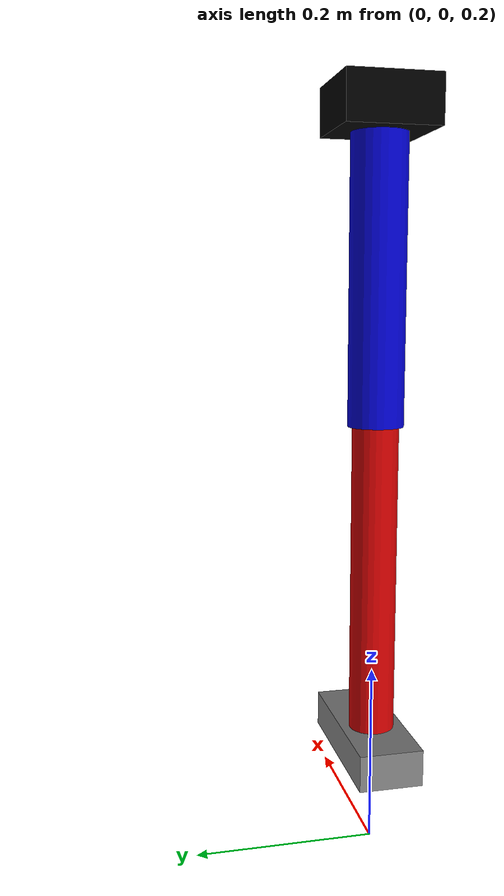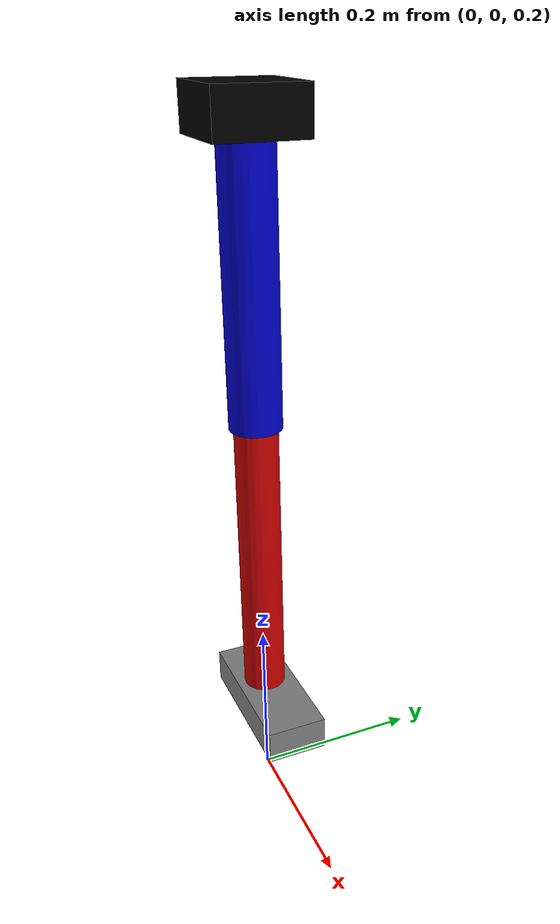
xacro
<?xml version="1.0"?>
<robot name="exo" xmlns:xacro="http://ros.org/wiki/xacro">

  <!-- Properties -->
  <xacro:property name="motor_mass" value="3" />  <!-- Hip / Knee motor mass (kg) -->
  <xacro:property name="base_mass" value="1.0" />   <!-- Base structure mass -->

  <!-- Transmission Macro -->
  <xacro:macro name="joint_transmission" params="transmission_name joint_name actuator_name hardware_interface:=EffortJointInterface mechanical_reduction:=1">
    <transmission name="${transmission_name}">
      <type>transmission_interface/SimpleTransmission</type>
      <joint name="${joint_name}">
        <hardwareInterface>hardware_interface/${hardware_interface}</hardwareInterface>
      </joint>
      <actuator name="${actuator_name}">
        <mechanicalReduction>${mechanical_reduction}</mechanicalReduction>
        <hardwareInterface>hardware_interface/${hardware_interface}</hardwareInterface>
      </actuator>
    </transmission>
  </xacro:macro>

  <!-- IMU Sensor Macro -->
  <xacro:macro name="imu_sensor" params="link_reference sensor_name topic_suffix update_rate:=100">
    <gazebo reference="${link_reference}">
      <sensor type="imu" name="${sensor_name}">
        <always_on>true</always_on>
        <update_rate>${update_rate}</update_rate>
        <plugin filename="libgazebo_ros_imu_sensor.so" name="${sensor_name}_plugin">
          <ros>
            <namespace>/sensors</namespace>
            <remapping>~/out:=imu/${topic_suffix}</remapping>
          </ros>
          <frame_name>${link_reference}</frame_name>
          <static_reference>true</static_reference>
          <gravity>true</gravity>
          <orientation_reference_frame>ENU</orientation_reference_frame>
        </plugin>
        <imu>
          <noise>
            <type>gaussian</type>
            <rate>
              <mean>0.0</mean>
              <stddev>0.0002</stddev>
            </rate>
            <accel>
              <mean>0.0</mean>
              <stddev>0.017</stddev>
            </accel>
          </noise>
        </imu>
      </sensor>
    </gazebo>
  </xacro:macro>

  <!-- Torque Macro Definition (Revised) -->
  <xacro:macro name="torque_sensor" params="reference_link sensor_name topic_suffix joint_name force_stddev torque_stddev">
    <!-- Enable feedback on the joint (critical for FT sensors) -->
    <gazebo reference="${joint_name}">
      <provideFeedback>true</provideFeedback>
    </gazebo>

    <!-- Sensor definition -->
    <gazebo>
      <plugin name="${sensor_name}_plugin" filename="libgazebo_ros_ft_sensor.so">
        <update_rate>1000</update_rate>
        <ros>
          <namespace>/sensors/${topic_suffix}</namespace>
        </ros>
        <joint_name>${joint_name}</joint_name>
        <noise>
          <force>
            <stddev>${force_stddev}</stddev>
          </force>
          <torque>
            <stddev>${torque_stddev}</stddev>
          </torque>
        </noise>
      </plugin>
    </gazebo>
</xacro:macro>

<!-- Robot Definition -->
  <link name="world"/>  <!-- Dummy link for Gazebo's world frame -->
    <!-- Optional: Add a world-fixed joint -->
    <joint name="fixed_joint" type="fixed">
      <parent link="world"/>
      <child link="base_link"/>
      <origin xyz="0 0 1" rpy="0 0 0"/>  <!-- 1m above ground -->
  </joint>

  <!-- Base Link with Motor Mass -->
  <link name="base_link">
    <inertial>
      <origin xyz="0 0 0" rpy="0 0 0"/>
      <mass value="4.0"/>  <!-- 1.0kg base + 3.0kg motor -->
      <!-- Empirical inertia for 3kg motor (scaled from original) -->
      <inertia
        ixx="0.04" ixy="0" ixz="0"
        iyy="0.04" iyz="0"
        izz="0.025"/>
    </inertial>

    <visual>
      <geometry><box size="0.1 0.1 0.05"/></geometry>
      <material name="black"><color rgba="0 0 0 1"/></material>
    </visual>

    <collision>
      <geometry><box size="0.1 0.1 0.05"/></geometry>
    </collision>
  </link>

  <!-- Gazebo Configurations -->
  <gazebo reference="base_link">
    <material>Gazebo/DarkGrey</material>
    <mu1>0.5</mu1>
    <mu2>0.5</mu2>
    <kp>500000</kp>  <!-- Reduced stiffness for heavy mass -->
    <kd>500</kd>     <!-- Increased damping -->
  </gazebo>

  <!-- Heavy Hip Joint -->
  <joint name="hip_joint" type="revolute">
    <parent link="base_link"/>
    <child link="thigh_link"/>

    <!-- Positioned 2.5cm below base center-->
    <origin xyz="0 0 -0.025" rpy="0 0 0"/>

    <!-- y-axis rotation for flexion/extension -->
    <axis xyz="0 1 0"/>

    <!-- Limits for ISO 13485 Compliance -->
    <limit
      effort="400"
      velocity="2"
      lower="-0.7854"
      upper="0.7854"
    />
    <!-- 300Nm torque (heavy motor), Conservative 2 rad/s (~115°/s), +-45° hard limit -->

    <safety_controller
      k_velocity="100"
      soft_lower_limit="-0.75"
      soft_upper_limit="0.75"
    />
    <!-- Stronger braking --> <!-- -43° soft limit --> <!-- +43° soft limit -->

    <!-- High damping for motor inertia -->
    <dynamics
      damping="1.5"
      friction="0.3"
    />
  </joint>
  <!-- Increased viscous damping --> <!-- Higher static friction -->

  <!-- Thigh Link with 3kg Motor Mass -->
  <link name="thigh_link">
    <visual>
      <geometry><cylinder length="0.3" radius="0.03"/></geometry>
      <origin xyz="0 0 -0.15" rpy="0 0 0"/>
      <material name="blue"><color rgba="0 0 0.8 1"/></material>
    </visual>

    <collision>
      <geometry><cylinder length="0.3" radius="0.03"/></geometry>
      <origin xyz="0 0 -0.15" rpy="0 0 0"/>
    </collision>

    <!-- Optimized Inertial for 3.5kg Total Mass -->
    <inertial>
      <origin xyz="0 0 0.2786"/>  <!-- COM: (0.5*0.15 + 3*0.3)/3.5 -->
      <mass value="3.5"/>
      <inertia
        ixx="0.1135" ixy="0" ixz="0"
        iyy="0.1135" iyz="0"
        izz="0.000225"/>  <!-- Dominated by axial motor inertia -->
    </inertial>
  </link>

  <gazebo reference="thigh_link">
    <mu1>0.8</mu1>  <!-- Increased friction for heavy load -->
    <mu2>0.8</mu2>
    <kp>2000000</kp>  <!-- Higher stiffness -->
    <kd>2000</kd>    <!-- Increased damping -->
  </gazebo>

  <!-- Knee Joint -->
  <joint name="knee_joint" type="revolute">
    <parent link="thigh_link"/>
    <child link="shank_link"/>

    <!-- Corrected Origin (0.3m from parent origin) -->
    <origin xyz="0 0 -0.3" rpy="0 0 0"/>  <!-- End of 0.3m thigh cylinder -->

    <!-- Mediolateral Rotation Axis (Y-axis for sagittal plane motion) -->
    <axis xyz="0 1 0"/>

    <!-- Enhanced Dynamics for 3kg Motor -->
    <dynamics damping="1.2" friction="0.4"/>  <!-- 8x higher damping than before -->

    <!-- ISO 13485 Compliant Limits -->
    <!-- 150° = 2.618 rad -->
    <limit effort="350"
          velocity="2.0"
          lower="0"
          upper="2"/>

    <!-- Stronger braking force -->
    <!-- 5.7° buffer for low limit-->
    <!-- 6.8° buffer for upper limit-->
    <safety_controller
      k_velocity="150"
      soft_lower_limit="0.05"
      soft_upper_limit="1.9"/>
  </joint>

  <!-- Shank Link -->
  <link name="shank_link">
    <visual>
      <geometry>
        <cylinder length="0.35" radius="0.025"/>
      </geometry>
      <!-- Center cylinder at link origin -->
      <origin xyz="0 0 -0.175" rpy="0 0 0"/>
      <material name="red">
        <color rgba="0.8 0 0 1"/>
      </material>
    </visual>

    <collision>
      <geometry>
        <cylinder length="0.35" radius="0.025"/>
      </geometry>
      <!-- Match visual origin -->
      <origin xyz="0 0 0" rpy="0 0 0"/>
    </collision>

    <!-- Optimized Inertial Properties -->
    <inertial>
      <origin xyz="0 0 0.175"/>  <!-- COM at geometric center -->
      <mass value="0.25"/>  <!-- Increased from 0.3kg for safety margin -->
      <!--
        Cylinder inertia formulas (r=0.025m, h=0.35m):
        I_xx = I_yy = (1/12)*m*(3r² + h²) = 0.00257
        I_zz = (1/2)*m*r² = 0.000078
      -->
      <inertia
        ixx="0.00257" ixy="0" ixz="0"
        iyy="0.00257" iyz="0"
        izz="0.000078"/>
    </inertial>
  </link>

  <!-- Shank Link Gazebo Attr -->
  <gazebo reference="shank_link">
    <material>Gazebo/Red</material>
    <mu1>0.6</mu1>  <!-- Increased friction for fabric grip -->
    <mu2>0.6</mu2>
    <kp>50000</kp>   <!-- Reduced stiffness for stability -->
    <kd>500</kd>     <!-- Increased damping -->
  </gazebo>

  <!-- Ankle Joint -->
  <joint name="ankle_joint" type="revolute">
    <parent link="shank_link"/>
    <child link="foot_link"/>
    <!-- Position ankle joint at the end of shank_link -->
    <origin xyz="0.015 0 -0.36" rpy="0 0 0"/> <!-- Negative Z to move down from shank_link -->
    <axis xyz="0 1 0"/>
    <dynamics damping="0.8" friction="0.1"/>
    <limit effort="150" velocity="3.0" lower="-0.3" upper="0.3"/>
    <safety_controller k_velocity="100" soft_lower_limit="-0.25" soft_upper_limit="0.25"/>
  </joint>

  <!-- Foot Link -->
  <link name="foot_link">
    <visual>
      <geometry><box size="0.18 0.07 0.04"/></geometry>
      <material name="gray"><color rgba="0.5 0.5 0.5 1"/></material>
    </visual>
    <collision><geometry><box size="0.15 0.05 0.01"/></geometry></collision>
    <inertial>
      <mass value="0.1"/>
      <inertia ixx="0.0001" ixy="0" ixz="0" iyy="0.0001" iyz="0" izz="0.0001"/>
    </inertial>
  </link>

  <!-- Foot Link Gazebo Attr -->
  <gazebo reference="foot_link">
    <mu1>0.2</mu1>  <!-- Contact Friction Coefficient -->
    <mu2>0.2</mu2>
    <kp>1000000</kp>  <!-- Contact Stiffness [N/m] -->
    <kd>100</kd>      <!-- Contact Damping [N·s/m] -->
  </gazebo>

<!-- Gazebo Transmissions -->

  <!-- Corrected Transmissions -->
  <xacro:joint_transmission
      transmission_name="hip_transmission"
      joint_name="hip_joint"
      actuator_name="hip_motor"
  />
  <xacro:joint_transmission
      transmission_name="knee_transmission"
      joint_name="knee_joint"
      actuator_name="knee_motor"
  />
  <xacro:joint_transmission
      transmission_name="ankle_transmission"
      joint_name="ankle_joint"
      actuator_name="ankle_motor"
  />

<!-- Gazebo IMU Sensor Plugin -->

  <!-- Thigh IMU -->
  <xacro:imu_sensor link_reference="thigh_link"
                  sensor_name="thigh_imu_sensor"
                  topic_suffix="thigh"
  />

  <!-- Shank IMU -->
  <xacro:imu_sensor link_reference="shank_link"
                  sensor_name="shank_imu_sensor"
                  topic_suffix="shank"
  />

  <!-- Foot IMU -->
  <xacro:imu_sensor link_reference="foot_link"
                  sensor_name="foot_imu_sensor"
                  topic_suffix="foot"
  />

<!-- Gazebo Torque Sensors Plugin -->
  <!-- Hip Torque -->
  <xacro:torque_sensor
    reference_link="thigh_link"
    sensor_name="hip_torque_sensor"
    topic_suffix="hip"
    joint_name="hip_joint"
    force_stddev="0.15"
    torque_stddev="0.02"
  />

  <!-- Knee Torque -->
    <xacro:torque_sensor
      reference_link="shank_link"
      sensor_name="knee_torque_sensor"
      topic_suffix="knee"
      joint_name="knee_joint"
      force_stddev="0.15"
      torque_stddev="0.02"
    />

  <!-- Ankle Torque -->
    <xacro:torque_sensor
      reference_link="foot_link"
      sensor_name="ankle_torque_sensor"
      topic_suffix="ankle"
      joint_name="ankle_joint"
      force_stddev="0.15"
      torque_stddev="0.02"
    />

<!-- Contact Sensor -->
  <gazebo reference="foot_link">
    <sensor type="contact" name="foot_contact">
      <always_on>true</always_on>
      <update_rate>50</update_rate>
    </sensor>
  </gazebo>

<!-- ROS Control Configuration -->
  <ros2_control name="exo" type="system">
    <hardware>
      <plugin>gazebo_ros2_control/GazeboSystem</plugin>
    </hardware>

    <!-- Define all 3 joints here -->
    <joint name="hip_joint">
      <command_interface name="effort"/>  <!-- Effort control for PID -->
      <state_interface name="position"/>  <!-- Feedback from the joint -->
    </joint>

    <joint name="knee_joint">
      <command_interface name="effort"/>
      <state_interface name="position"/>
    </joint>

    <joint name="ankle_joint">
      <command_interface name="effort"/>
      <state_interface name="position"/>
    </joint>
  </ros2_control>

<!-- ROS Control Plugin (Optimized) -->
  <gazebo>
    <plugin name="exo_ros_control" filename="libgazebo_ros_control.so">
      <robotNamespace>/exo</robotNamespace>
      <controlPeriod>0.001</controlPeriod>  <!-- 1kHz control rate -->
      <robotParam>robot_description</robotParam>
      <parameters>$(find exo_urdf)/config/controllers.yaml</parameters>
    </plugin>
  </gazebo>

  <gazebo>
    <physics type="ode">
      <max_step_size>0.002</max_step_size>
      <real_time_update_rate>500</real_time_update_rate>
    </physics>
  </gazebo>

</robot>
